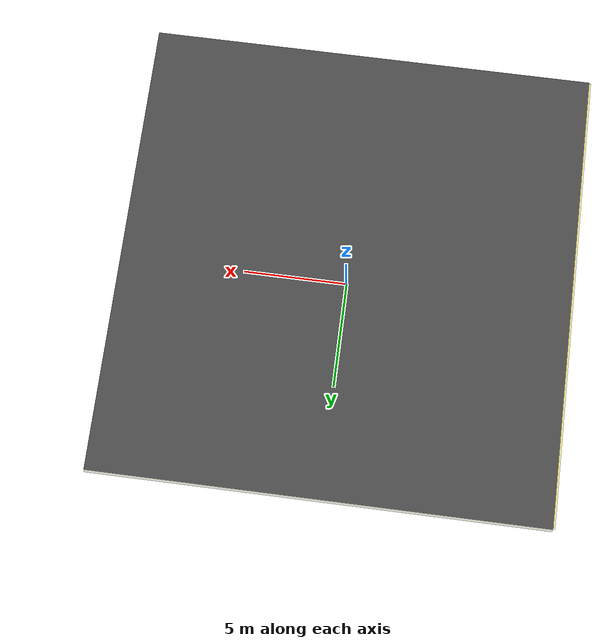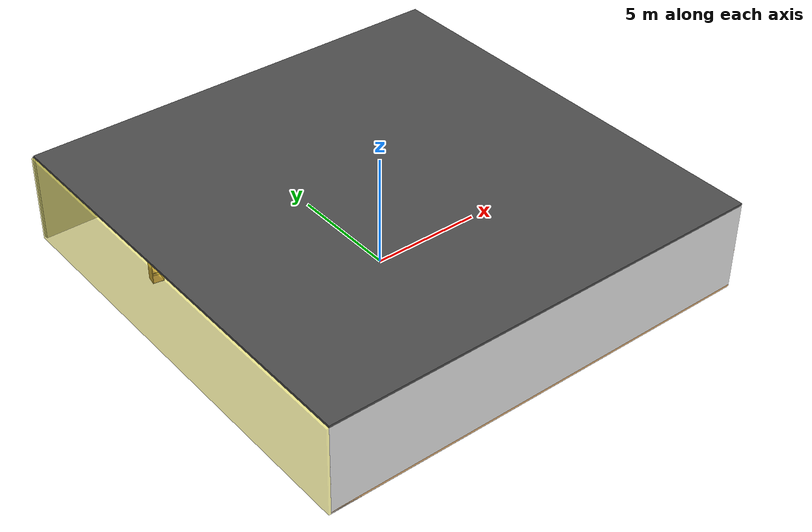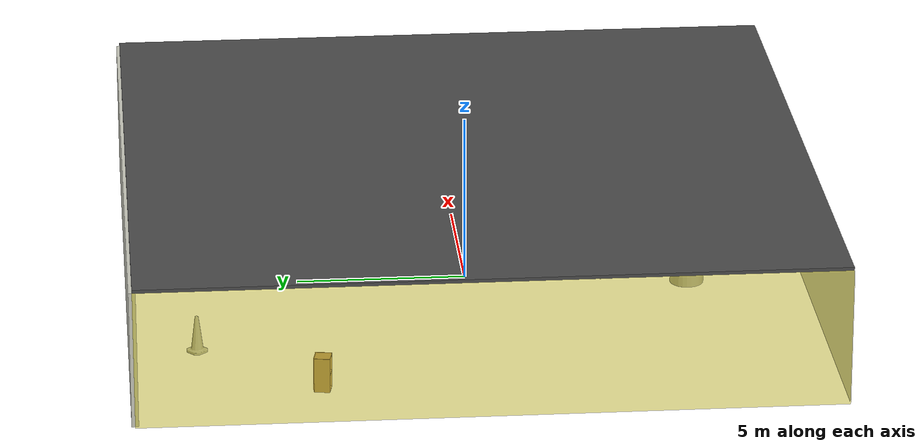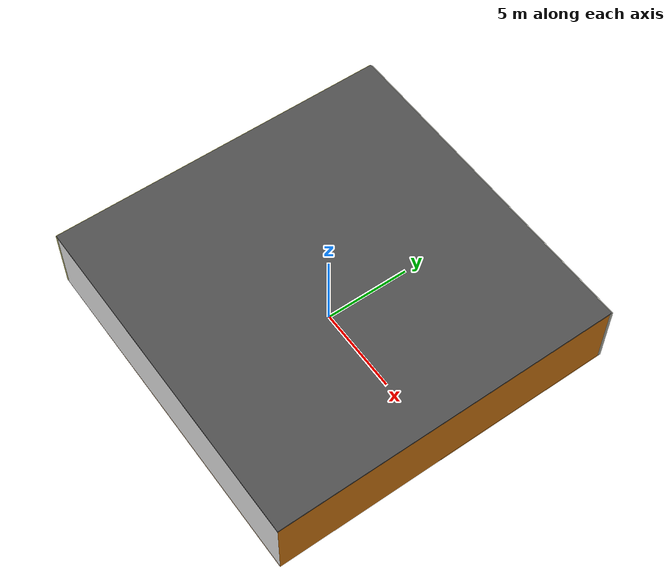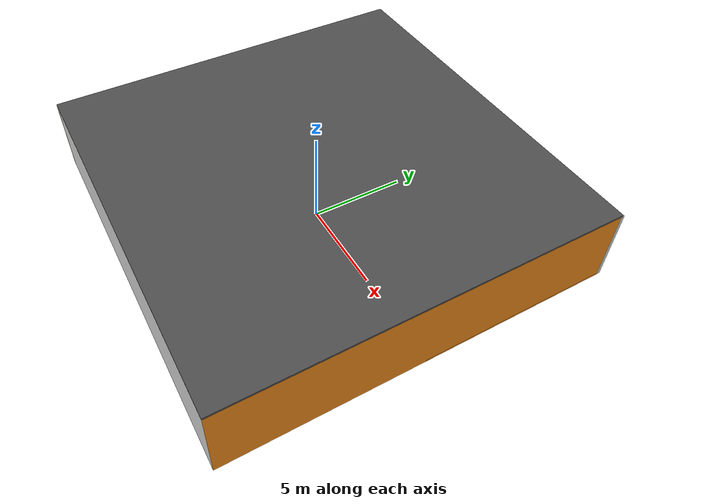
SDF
<sdf version="1.4">
 <world name="default">
  <physics type="ode">
   <max_step_size>0.001</max_step_size>
   <real_time_factor>1</real_time_factor>
   <real_time_update_rate>1000</real_time_update_rate>
   <gravity>0 0 -9.8</gravity>
  </physics>
  <scene><ambient>0.4 0.4 0.4 1</ambient><background>0.7 0.7 0.7 1</background><shadows>1</shadows></scene>
  <model name="Surrounding">
   <static>1</static>
   <link name="Ceiling">
    <collision name="Ceiling_Collision"><geometry><box><size>20 20 0.1</size></box></geometry></collision>
    <visual name="Ceiling_Visual">
     <geometry><box><size>20 20 0.1</size></box></geometry>
     <material>
      <script><uri>file://media/materials/scripts/gazebo.material</uri><name>Gazebo/Road</name></script>
     </material>
    </visual>
    <pose>0 0 4.05 0 0 0</pose>
   </link>
   <link name="Wall_South">
    <collision name="Wall_South_Collision">
     <geometry><box><size>20 0 4</size></box></geometry>
     <pose>0 0 2 0 -0 0</pose>
    </collision>
    <visual name="Wall_South_Visual">
     <pose>0 0 2 0 -0 0</pose>
     <geometry><box><size>20 0 4</size></box></geometry>
     <material>
      <script><uri>file://media/materials/scripts/gazebo.material</uri><name>Gazebo/WhiteGlow</name></script>
     </material>
    </visual>
    <velocity_decay><linear>0</linear><angular>0</angular></velocity_decay>
    <pose>0 -10 0 0 -0 0</pose>
   </link>
   <link name="Wall_East">
    <collision name="Wall_21_Collision">
     <geometry><box><size>20 0 4</size></box></geometry>
     <pose>0 0 2 0 -0 0</pose>
    </collision>
    <visual name="Wall_21_Visual">
     <pose>0 0 2 0 -0 0</pose>
     <geometry><box><size>20 0 4</size></box></geometry>
     <material>
      <script><uri>file://media/materials/scripts/gazebo.material</uri><name>Gazebo/Orange</name></script>
     </material>
    </visual>
    <velocity_decay><linear>0</linear><angular>0</angular></velocity_decay>
    <pose>10 0 0 0 -0 1.5708</pose>
   </link>
   <link name="Wall_North">
    <collision name="Wall_22_Collision">
     <geometry><box><size>20 0.2 4</size></box></geometry>
     <pose>0 0 2 0 -0 0</pose>
    </collision>
    <visual name="Wall_22_Visual">
     <pose>0 0 2 0 -0 0</pose>
     <geometry><box><size>20 0.2 4</size></box></geometry>
     <material>
      <script><uri>file://media/materials/scripts/gazebo.material</uri><name>Gazebo/PaintedWall</name></script>
     </material>
    </visual>
    <velocity_decay><linear>0</linear><angular>0</angular></velocity_decay>
    <pose>0 10 0 0 -0 0</pose>
   </link>
   <link name="Wall_West">
    <collision name="Wall_23_Collision">
     <geometry><box><size>20 0.2 4</size></box></geometry>
     <pose>0 0 2 0 -0 0</pose>
    </collision>
    <visual name="Wall_23_Visual">
     <pose>0 0 2 0 -0 0</pose>
     <geometry><box><size>20 0.2 4</size></box></geometry>
     <material>
      <script>
       <uri>file://media/materials/scripts/gazebo.material</uri>
       <name>Gazebo/YellowTransparent</name>
      </script>
     </material>
    </visual>
    <velocity_decay><linear>0</linear><angular>0</angular></velocity_decay>
    <pose>-10 0 0 0 0 -1.5708</pose>
   </link>
   <link name="Ground_link">
    <collision name="collision">
     <pose>0 0 .05 0 -0 0</pose>
     <geometry><box><size>20 20 0.1</size></box></geometry>
    </collision>
    <visual name="visual">
     <pose>0 0 .05 0 -0 0</pose>
     <geometry><box><size>20 20 0.1</size></box></geometry>
     <material>
      <script>
       <uri>file://media/materials/scripts/gazebo.material</uri>
       <name>Gazebo/OrangeTransparent</name>
      </script>
     </material>
    </visual>
   </link>
   <static>1</static>
  </model>
  <spherical_coordinates>
   <surface_model>EARTH_WGS84</surface_model>
   <latitude_deg>0</latitude_deg>
   <longitude_deg>0</longitude_deg>
   <elevation>0</elevation>
   <heading_deg>0</heading_deg>
  </spherical_coordinates>
  <light name="lightball_0" type="diffuse">
   <diffuse>0.8 0.8 0.8 1</diffuse>
   <specular>0.2 0.2 0.2 1</specular>
   <attenuation>
    <range>100</range>
    <constant>0.7</constant>
    <linear>0.01</linear>
    <quadratic>0.001</quadratic>
   </attenuation>
   <direction>-0.5 0.1 -0.9</direction>
   <pose>-1.52450516676 -6.14064477311 1.94538236812 0 0 0</pose>
  </light>
  <light name="lightball_1" type="diffuse">
   <diffuse>0.8 0.8 0.8 1</diffuse>
   <specular>0.2 0.2 0.2 1</specular>
   <attenuation>
    <range>100</range>
    <constant>0.7</constant>
    <linear>0.01</linear>
    <quadratic>0.001</quadratic>
   </attenuation>
   <direction>-0.5 0.1 -0.9</direction>
   <pose>-0.00123433093352 -2.20485271386 1.89256449823 0 0 0</pose>
  </light>
  <light name="lightball_2" type="diffuse">
   <diffuse>0.8 0.8 0.8 1</diffuse>
   <specular>0.2 0.2 0.2 1</specular>
   <attenuation>
    <range>100</range>
    <constant>0.7</constant>
    <linear>0.01</linear>
    <quadratic>0.001</quadratic>
   </attenuation>
   <direction>-0.5 0.1 -0.9</direction>
   <pose>3.72767789885 -8.2074448376 1.3206484541 0 0 0</pose>
  </light>
  <light name="lightball_3" type="diffuse">
   <diffuse>0.8 0.8 0.8 1</diffuse>
   <specular>0.2 0.2 0.2 1</specular>
   <attenuation>
    <range>100</range>
    <constant>0.7</constant>
    <linear>0.01</linear>
    <quadratic>0.001</quadratic>
   </attenuation>
   <direction>-0.5 0.1 -0.9</direction>
   <pose>0.0316113398774 -5.41157496204 1.77307493082 0 0 0</pose>
  </light>
  <light name="lightball_4" type="diffuse">
   <diffuse>0.8 0.8 0.8 1</diffuse>
   <specular>0.2 0.2 0.2 1</specular>
   <attenuation>
    <range>100</range>
    <constant>0.7</constant>
    <linear>0.01</linear>
    <quadratic>0.001</quadratic>
   </attenuation>
   <direction>-0.5 0.1 -0.9</direction>
   <pose>6.36451735526 3.33654308043 1.34648075331 0 0 0</pose>
  </light>
  <light name="lightball_5" type="diffuse">
   <diffuse>0.8 0.8 0.8 1</diffuse>
   <specular>0.2 0.2 0.2 1</specular>
   <attenuation>
    <range>100</range>
    <constant>0.7</constant>
    <linear>0.01</linear>
    <quadratic>0.001</quadratic>
   </attenuation>
   <direction>-0.5 0.1 -0.9</direction>
   <pose>9.29396903665 6.31455735534 1.85925785898 0 0 0</pose>
  </light>
  <light name="lightball_6" type="diffuse">
   <diffuse>0.8 0.8 0.8 1</diffuse>
   <specular>0.2 0.2 0.2 1</specular>
   <attenuation>
    <range>100</range>
    <constant>0.7</constant>
    <linear>0.01</linear>
    <quadratic>0.001</quadratic>
   </attenuation>
   <direction>-0.5 0.1 -0.9</direction>
   <pose>-4.52026721752 0.428514384721 3.12540406888 0 0 0</pose>
  </light>
  <light name="lightball_7" type="diffuse">
   <diffuse>0.8 0.8 0.8 1</diffuse>
   <specular>0.2 0.2 0.2 1</specular>
   <attenuation>
    <range>100</range>
    <constant>0.7</constant>
    <linear>0.01</linear>
    <quadratic>0.001</quadratic>
   </attenuation>
   <direction>-0.5 0.1 -0.9</direction>
   <pose>-7.66626258267 3.88475035175 2.87820948568 0 0 0</pose>
  </light>
  <light name="lightball_8" type="diffuse">
   <diffuse>0.8 0.8 0.8 1</diffuse>
   <specular>0.2 0.2 0.2 1</specular>
   <attenuation>
    <range>100</range>
    <constant>0.7</constant>
    <linear>0.01</linear>
    <quadratic>0.001</quadratic>
   </attenuation>
   <direction>-0.5 0.1 -0.9</direction>
   <pose>1.77834602155 7.39001263016 2.93280364467 0 0 0</pose>
  </light>
  <include><uri>model://cabinet</uri><pose>-7.85063870803 4.66741909576 0 0 0 1.3899538694</pose></include>
  <include>
   <uri>model://construction_cone</uri>
   <pose>-4.89603107529 8.12240918781 0 0 0 0.730944960805</pose>
  </include>
  <include>
   <uri>model://textured_shapes</uri>
   <pose>0.827297282329 -5.27221978383 0 0 0 2.80394586793</pose>
  </include>
  <include>
   <uri>model://robocup_3Dsim_goal</uri>
   <pose>3.92639524225 -4.86349607592 0 0 0 2.29732624981</pose>
  </include>
  <include>
   <uri>model://textured_shapes</uri>
   <pose>4.22103858961 1.68645211565 0 0 0 1.66832619462</pose>
  </include>
  <include>
   <uri>model://construction_cone</uri>
   <pose>6.99990512486 8.14303754507 0 0 0 0.450381818484</pose>
  </include>
 </world>
</sdf>

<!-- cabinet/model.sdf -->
<sdf version="1.5">
  <model name="cabinet">
    <static>true</static>
    <link name="cabinet_bottom_plate">
      <inertial>
        <pose>0 0 -1 0 0 0</pose>
        <inertia>
          <ixx>2.050000</ixx>
          <ixy>0</ixy>
          <ixz>0</ixz>
          <iyy>2.050000</iyy>
          <iyz>0</iyz>
          <izz>2.050000</izz>
        </inertia>
        <mass>25.000000</mass>
      </inertial>
      <collision name="cabinet_bottom_plate_geom">
        <pose>0 0 0.010000 0 0 0</pose>
        <geometry>
          <box>
            <size>0.450000 0.450000 0.020000</size>
          </box>
        </geometry>
      </collision>
      <visual name="cabinet_bottom_plate_geom_visual">
        <pose>0 0 0.010000 0 0 0</pose>
        <geometry>
          <box>
            <size>0.450000 0.450000 0.020000</size>
          </box>
        </geometry>
        <material>
          <script>
            <uri>model://media/materials/scripts/gazebo.material</uri>
            <name>Gazebo/Wood</name>
          </script>
        </material>
      </visual>
      <collision name="cabinet_bottom_plate_geom_cabinet_back_plate">
        <pose>0.235000 0 0.510000 0 0 0</pose>
        <geometry>
          <box>
            <size>0.020000 0.450000 1.020000</size>
          </box>
        </geometry>
      </collision>
      <visual name="cabinet_bottom_plate_geom_cabinet_back_plate_visual">
        <pose>0.235000 0 0.510000 0 0 0</pose>
        <geometry>
          <box>
            <size>0.020000 0.450000 1.020000</size>
          </box>
        </geometry>
        <material>
          <script>
            <uri>model://media/materials/scripts/gazebo.material</uri>
            <name>Gazebo/Wood</name>
          </script>
        </material>
      </visual>
      <collision name="cabinet_bottom_plate_geom_cabinet_left_plate">
        <pose>0 0.235000 0.510000 0 0 0</pose>
        <geometry>
          <box>
            <size>0.450000 0.020000 1.020000</size>
          </box>
        </geometry>
      </collision>
      <visual name="cabinet_bottom_plate_geom_cabinet_left_plate_visual">
        <pose>0 0.235000 0.510000 0 0 0</pose>
        <geometry>
          <box>
            <size>0.450000 0.020000 1.020000</size>
          </box>
        </geometry>
        <material>
          <script>
            <uri>model://media/materials/scripts/gazebo.material</uri>
            <name>Gazebo/Wood</name>
          </script>
        </material>
      </visual>
      <collision name="cabinet_bottom_plate_geom_cabinet_middle_plate">
        <pose>0 0 0.510000 0 0 0</pose>
        <geometry>
          <box>
            <size>0.450000 0.450000 0.020000</size>
          </box>
        </geometry>
      </collision>
      <visual name="cabinet_bottom_plate_geom_cabinet_middle_plate_visual">
        <pose>0 0 0.510000 0 0 0</pose>
        <geometry>
          <box>
            <size>0.450000 0.450000 0.020000</size>
          </box>
        </geometry>
        <material>
          <script>
            <uri>model://media/materials/scripts/gazebo.material</uri>
            <name>Gazebo/Wood</name>
          </script>
        </material>
      </visual>
      <collision name="cabinet_bottom_plate_geom_cabinet_right_plate">
        <pose>0 -0.235000 0.510000 0 0 0</pose>
        <geometry>
          <box>
            <size>0.450000 0.020000 1.020000</size>
          </box>
        </geometry>
      </collision>
      <visual name="cabinet_bottom_plate_geom_cabinet_right_plate_visual">
        <pose>0 -0.235000 0.510000 0 0 0</pose>
        <geometry>
          <box>
            <size>0.450000 0.020000 1.020000</size>
          </box>
        </geometry>
        <material>
          <script>
            <uri>model://media/materials/scripts/gazebo.material</uri>
            <name>Gazebo/Wood</name>
          </script>
        </material>
      </visual>
      <collision name="cabinet_bottom_plate_geom_cabinet_top_plate">
        <pose>0 0 1.010000 0 0 0</pose>
        <geometry>
          <box>
            <size>0.450000 0.450000 0.020000</size>
          </box>
        </geometry>
      </collision>
      <visual name="cabinet_bottom_plate_geom_cabinet_top_plate_visual">
        <pose>0 0 1.010000 0 0 0</pose>
        <geometry>
          <box>
            <size>0.450000 0.450000 0.020000</size>
          </box>
        </geometry>
        <material>
          <script>
            <uri>model://media/materials/scripts/gazebo.material</uri>
            <name>Gazebo/Wood</name>
          </script>
        </material>
      </visual>
    </link>
  </model>
</sdf>

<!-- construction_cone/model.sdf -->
<sdf version="1.5">
  <model name="Construction Cone">
    <link name="link">
      <collision name="collision">
        <geometry>
          <mesh>
            <scale>10 10 10</scale>
            <uri>file://isr-testbed/construction_cone/meshes/construction_cone.dae</uri>
          </mesh>
        </geometry>
      </collision>
      <visual name="visual">
        <geometry>
          <mesh>
            <scale>10 10 10</scale>
            <uri>file://isr-testbed/construction_cone/meshes/construction_cone.dae</uri>
          </mesh>
        </geometry>
      </visual>
    </link>
  </model>
</sdf>

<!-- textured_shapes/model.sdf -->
<sdf version="1.6">
  <model name="textured_shapes">
    <pose>0 0 0.5 0 0 0</pose>
    <link name="box">
      <pose>0 -1.5 0 0 0 0</pose>
      <collision name="collision">
        <geometry>
          <box>
            <size>1 1 1</size>
          </box>
        </geometry>
      </collision>
      <visual name="visual">
        <geometry>
          <box>
            <size>1 1 1</size>
          </box>
        </geometry>
        <material>
          <script>
            <uri>model://../model_source/models/textured_shapes/materials/scripts</uri>
            <uri>model://../model_source/models/textured_shapes/materials/textures</uri>
            <name>TexturedShape/Squares</name>
          </script>
        </material>
      </visual>
    </link>
    <link name="sphere">
      <collision name="collision">
        <geometry>
          <sphere>
            <radius>0.5</radius>
          </sphere>
        </geometry>
      </collision>
      <visual name="visual">
        <geometry>
          <sphere>
            <radius>0.5</radius>
          </sphere>
        </geometry>
        <material>
          <script>
            <uri>model://../model_source/models/textured_shapes/materials/scripts</uri>
            <uri>model://../model_source/models/textured_shapes/materials/textures</uri>
            <name>TexturedShape/Squares</name>
          </script>
        </material>
      </visual>
    </link>
    <link name="cylinder">
      <pose>0 1.5 0 0 0 0</pose>
      <collision name="collision">
        <geometry>
          <cylinder>
            <radius>0.5</radius>
            <length>1</length>
          </cylinder>
        </geometry>
      </collision>
      <visual name="visual">
        <geometry>
          <cylinder>
            <radius>0.5</radius>
            <length>1</length>
          </cylinder>
        </geometry>
        <material>
          <script>
            <uri>model://../model_source/models/textured_shapes/materials/scripts</uri>
            <uri>model://../model_source/models/textured_shapes/materials/textures</uri>
            <name>TexturedShape/Squares</name>
          </script>
        </material>
      </visual>
    </link>
  </model>
</sdf>

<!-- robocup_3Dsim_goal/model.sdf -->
<sdf version="1.5">
  <model name="robocup_3d_goal">
    <static>true</static>
    <link name="left_post">
      <pose>0 1.05 0.45 0 0 0</pose>
      <collision name="collision">
        <geometry>
          <cylinder>
            <radius>0.05</radius>
            <length>0.9</length>
          </cylinder>
        </geometry>
      </collision>
      <visual name="visual">
        <geometry>
          <cylinder>
            <radius>0.05</radius>
            <length>0.9</length>
          </cylinder>
        </geometry>
        <material>
          <script>
            <uri>file://media/materials/scripts/gazebo.material</uri>
            <name>Gazebo/ZincYellow</name>
          </script>
        </material>
      </visual>
    </link>
    <link name="left_support_horiz_lower">
      <pose>0.30 1.05 0.01 0 0 0</pose>
      <collision name="collision">
        <geometry>
          <box>
            <size>0.50 0.02 0.02</size>
          </box>
        </geometry>
      </collision>
      <visual name="visual">
        <geometry>
          <box>
            <size>0.50 0.02 0.02</size>
          </box>
        </geometry>
        <material>
          <script>
            <uri>file://media/materials/scripts/gazebo.material</uri>
            <name>Gazebo/White</name>
          </script>
        </material>
      </visual>
    </link>
    <link name="left_support_horiz_upper">
      <pose>0.30 1.05 0.79 0 0 0</pose>
      <collision name="collision">
        <geometry>
          <box>
            <size>0.50 0.02 0.02</size>
          </box>
        </geometry>
      </collision>
      <visual name="visual">
        <geometry>
          <box>
            <size>0.50 0.02 0.02</size>
          </box>
        </geometry>
        <material>
          <script>
            <uri>file://media/materials/scripts/gazebo.material</uri>
            <name>Gazebo/White</name>
          </script>
        </material>
      </visual>
    </link>
    <link name="left_support_vertical">
      <pose>0.56 1.05 0.4 0 1.5708 0</pose>
      <collision name="collision">
        <geometry>
          <box>
            <size>0.80 0.02 0.02</size>
          </box>
        </geometry>
      </collision>
      <visual name="visual">
        <geometry>
          <box>
            <size>0.80 0.02 0.02</size>
          </box>
        </geometry>
        <material>
          <script>
            <uri>file://media/materials/scripts/gazebo.material</uri>
            <name>Gazebo/White</name>
          </script>
        </material>
      </visual>
    </link>
    <link name="right_support_horiz_lower">
      <pose>0.30 -1.05 0.01 0 0 0</pose>
      <collision name="collision">
        <geometry>
          <box>
            <size>0.50 0.02 0.02</size>
          </box>
        </geometry>
      </collision>
      <visual name="visual">
        <geometry>
          <box>
            <size>0.50 0.02 0.02</size>
          </box>
        </geometry>
        <material>
          <script>
            <uri>file://media/materials/scripts/gazebo.material</uri>
            <name>Gazebo/White</name>
          </script>
        </material>
      </visual>
    </link>
    <link name="right_support_horiz_upper">
      <pose>0.30 -1.05 0.79 0 0 0</pose>
      <collision name="collision">
        <geometry>
          <box>
            <size>0.50 0.02 0.02</size>
          </box>
        </geometry>
      </collision>
      <visual name="visual">
        <geometry>
          <box>
            <size>0.50 0.02 0.02</size>
          </box>
        </geometry>
        <material>
          <script>
            <uri>file://media/materials/scripts/gazebo.material</uri>
            <name>Gazebo/White</name>
          </script>
        </material>
      </visual>
    </link>
    <link name="right_support_vertical">
      <pose>0.56 -1.05 0.4 0 1.5708 0</pose>
      <collision name="collision">
        <geometry>
          <box>
            <size>0.80 0.02 0.02</size>
          </box>
        </geometry>
      </collision>
      <visual name="visual">
        <geometry>
          <box>
            <size>0.80 0.02 0.02</size>
          </box>
        </geometry>
        <material>
          <script>
            <uri>file://media/materials/scripts/gazebo.material</uri>
            <name>Gazebo/White</name>
          </script>
        </material>
      </visual>
    </link>
    <link name="center_support_horiz_lower">
      <pose>0.56 0 0.01 0 1.5708 0</pose>
      <collision name="collision">
        <geometry>
          <box>
            <size>0.02 2.08 0.02</size>
          </box>
        </geometry>
      </collision>
      <visual name="visual">
        <geometry>
          <box>
            <size>0.02 2.08 0.02</size>
          </box>
        </geometry>
        <material>
          <script>
            <uri>file://media/materials/scripts/gazebo.material</uri>
            <name>Gazebo/White</name>
          </script>
        </material>
      </visual>
    </link>
    <link name="center_support_horiz_upper">
      <pose>0.56 0 0.79 0 1.5708 0</pose>
      <collision name="collision">
        <geometry>
          <box>
            <size>0.02 2.08 0.02</size>
          </box>
        </geometry>
      </collision>
      <visual name="visual">
        <geometry>
          <box>
            <size>0.02 2.08 0.02</size>
          </box>
        </geometry>
        <material>
          <script>
            <uri>file://media/materials/scripts/gazebo.material</uri>
            <name>Gazebo/White</name>
          </script>
        </material>
      </visual>
    </link>
    <link name="right_post">
      <pose>0 -1.05 0.45 0 0 0</pose>
      <collision name="collision">
        <geometry>
          <cylinder>
            <radius>0.05</radius>
            <length>0.9</length>
          </cylinder>
        </geometry>
      </collision>
      <visual name="visual">
        <geometry>
          <cylinder>
            <radius>0.05</radius>
            <length>0.9</length>
          </cylinder>
        </geometry>
        <material>
          <script>
            <uri>file://media/materials/scripts/gazebo.material</uri>
            <name>Gazebo/ZincYellow</name>
          </script>
        </material>
      </visual>
    </link>
    <link name="crossbar">
      <pose>0 0 0.85 1.57 1.57 0</pose>
      <collision name="collision">
        <geometry>
          <cylinder>
            <radius>0.05</radius>
            <length>2.0</length>
          </cylinder>
        </geometry>
      </collision>
      <visual name="visual">
        <geometry>
          <cylinder>
            <radius>0.05</radius>
            <length>2.0</length>
          </cylinder>
        </geometry>
        <material>
          <script>
            <uri>file://media/materials/scripts/gazebo.material</uri>
            <name>Gazebo/ZincYellow</name>
          </script>
        </material>
      </visual>
    </link>
    <link name="center_net">
      <pose>0.56 0 0.40 0 0 0</pose>
      <collision name="collision">
        <geometry>
          <box>
            <size>0.01 2.1 0.80</size>
          </box>
        </geometry>
      </collision>
      <visual name="visual">
        <geometry>
          <box>
            <size>0.01 2.1 0.80</size>
          </box>
        </geometry>
        <material>
          <script>
            <uri>model://../model_source/models/robocup09_spl_field/materials/scripts/</uri>
            <uri>model://../model_source/models/robocup09_spl_field/materials/textures/</uri>
            <name>RoboCup/Net</name>
          </script>
        </material>
      </visual>
    </link>
    <link name="left_net">
      <pose>0.30 1.05 0.40 0 0 0</pose>
      <collision name="collision">
        <geometry>
          <box>
            <size>0.50 0.01 0.76</size>
          </box>
        </geometry>
      </collision>
      <visual name="visual">
        <geometry>
          <box>
            <size>0.50 0.01 0.76</size>
          </box>
        </geometry>
        <material>
          <script>
            <uri>model://../model_source/models/robocup09_spl_field/materials/scripts/</uri>
            <uri>model://../model_source/models/robocup09_spl_field/materials/textures/</uri>
            <name>RoboCup/Net</name>
          </script>
        </material>
      </visual>
    </link>
    <link name="right_net">
      <pose>0.30 -1.05 0.40 0 0 0</pose>
      <collision name="collision">
        <geometry>
          <box>
            <size>0.50 0.01 0.76</size>
          </box>
        </geometry>
      </collision>
      <visual name="visual">
        <geometry>
          <box>
            <size>0.50 0.01 0.76</size>
          </box>
        </geometry>
        <material>
          <script>
            <uri>model://../model_source/models/robocup09_spl_field/materials/scripts/</uri>
            <uri>model://../model_source/models/robocup09_spl_field/materials/textures/</uri>
            <name>RoboCup/Net</name>
          </script>
        </material>
      </visual>
    </link>
  </model>
</sdf>
